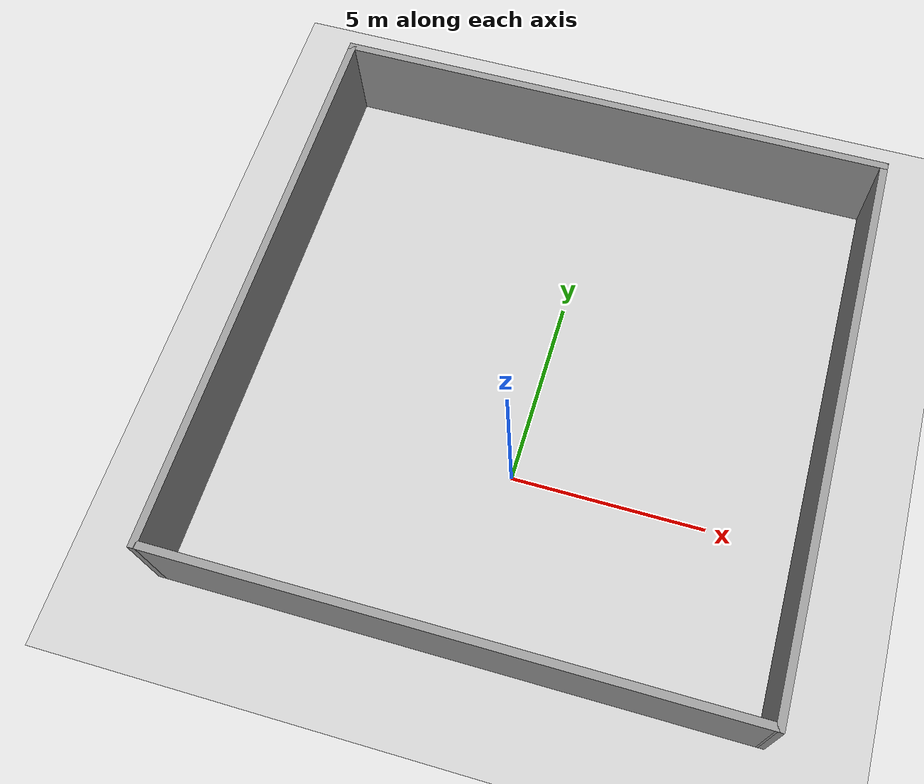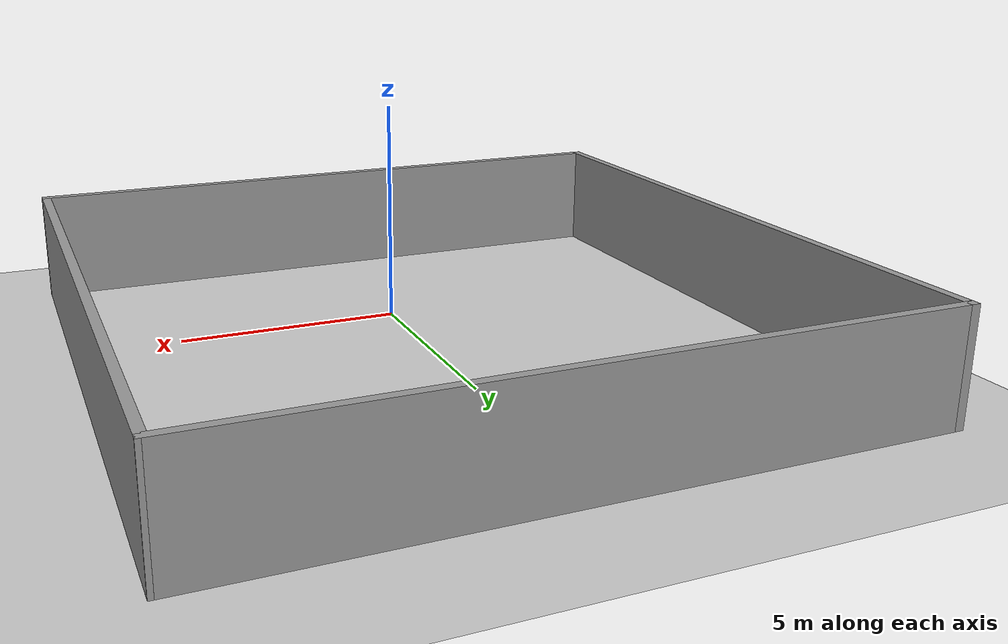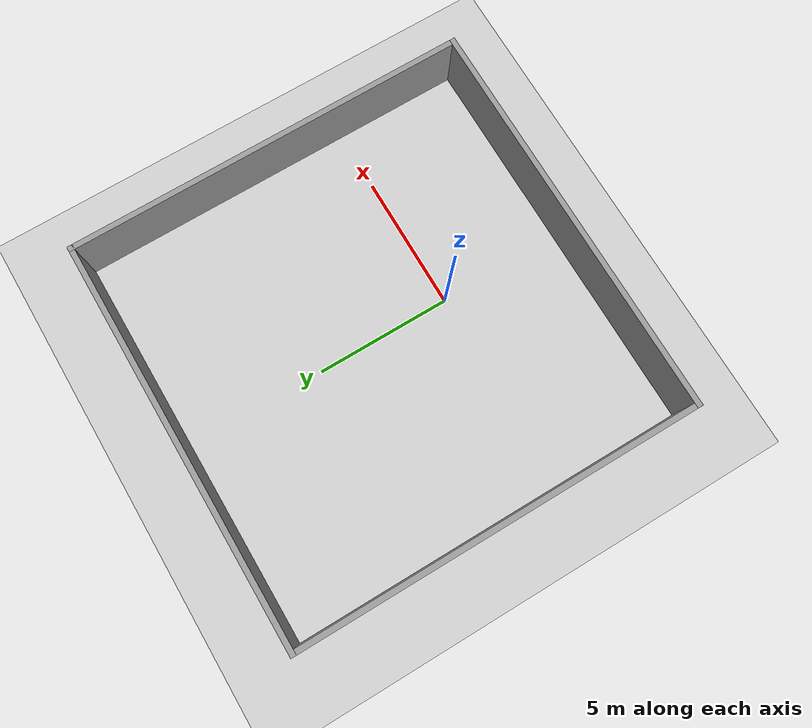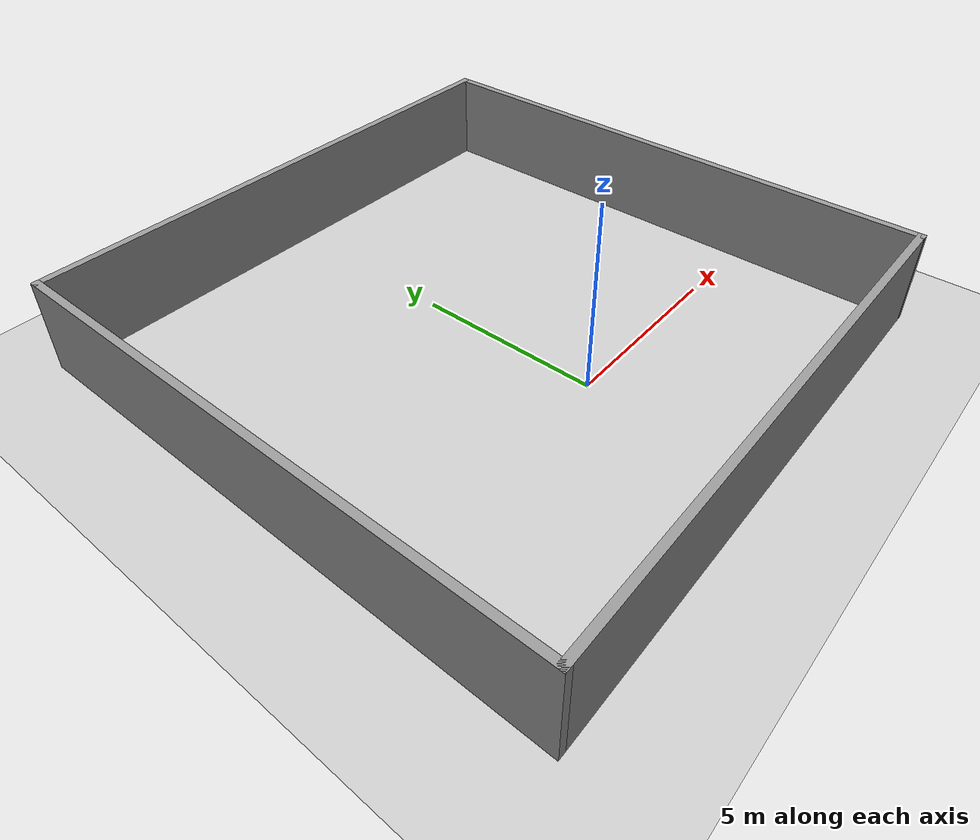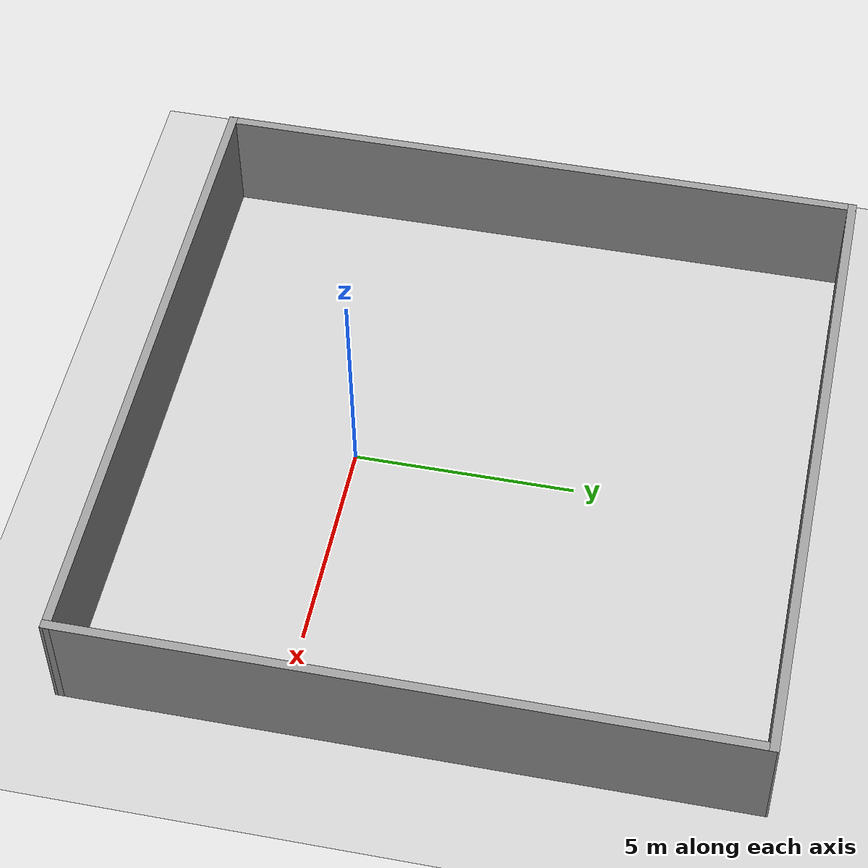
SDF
<?xml version='1.0'?>
<sdf version='1.4'>
  <world name="default">
    <!-- A global light source -->
    <include>
      <uri>model://sun</uri>
    </include>

    <physics type="ode">
      <gravity>0 0 -9.81</gravity>
      <max_step_size>0.001</max_step_size>
      <real_time_factor>1</real_time_factor>
      <real_time_update_rate>1000</real_time_update_rate>
      <ode>
        <solver>
          <type>quick</type>
          <iters>50</iters>
          <sor>1.4</sor>
        </solver>
        <constraints>
          <cfm>0</cfm>
          <erp>1</erp>
          <contact_max_correcting_vel>0</contact_max_correcting_vel>
          <contact_surface_layer>0</contact_surface_layer>
        </constraints>
      </ode>
    </physics>

    <include>
      <uri>model://ground_plane</uri>
    </include>

  <model name='building'>
    <link name='Wall_0'>
      <collision name='Wall_0_Collision'>
        <geometry>
          <box>
            <size>15 0.2 2.5</size>
          </box>
        </geometry>
        <pose>0 0 1.25 0 -0 0</pose>
      </collision>
      <visual name='Wall_0_Visual'>
        <pose>0 0 1.25 0 -0 0</pose>
        <geometry>
          <box>
            <size>15 0.2 2.5</size>
          </box>
        </geometry>
        <material>
          <script>
            <uri>file://media/materials/scripts/gazebo.material</uri>
            <name>Gazebo/Grey</name>
          </script>
        </material>
      </visual>
      <velocity_decay>
        <linear>0</linear>
        <angular>0</angular>
      </velocity_decay>
      <pose>-7.5 2.76 0 0 -0 1.5708</pose>
    </link>
    <link name='Wall_1'>
      <collision name='Wall_1_Collision'>
        <geometry>
          <box>
            <size>15 0.2 2.5</size>
          </box>
        </geometry>
        <pose>0 0 1.25 0 -0 0</pose>
      </collision>
      <visual name='Wall_1_Visual'>
        <pose>0 0 1.25 0 -0 0</pose>
        <geometry>
          <box>
            <size>15 0.2 2.5</size>
          </box>
        </geometry>
        <material>
          <script>
            <uri>file://media/materials/scripts/gazebo.material</uri>
            <name>Gazebo/Grey</name>
          </script>
        </material>
      </visual>
      <velocity_decay>
        <linear>0</linear>
        <angular>0</angular>
      </velocity_decay>
      <pose>-0.1 10.16 0 0 -0 0</pose>
    </link>
    <link name='Wall_2'>
      <collision name='Wall_2_Collision'>
        <geometry>
          <box>
            <size>15 0.2 2.5</size>
          </box>
        </geometry>
        <pose>0 0 1.25 0 -0 0</pose>
      </collision>
      <visual name='Wall_2_Visual'>
        <pose>0 0 1.25 0 -0 0</pose>
        <geometry>
          <box>
            <size>15 0.2 2.5</size>
          </box>
        </geometry>
        <material>
          <script>
            <uri>file://media/materials/scripts/gazebo.material</uri>
            <name>Gazebo/Grey</name>
          </script>
        </material>
      </visual>
      <velocity_decay>
        <linear>0</linear>
        <angular>0</angular>
      </velocity_decay>
      <pose>7.30318 2.76 0 0 0 -1.57037</pose>
    </link>
    <link name='Wall_3'>
      <collision name='Wall_3_Collision'>
        <geometry>
          <box>
            <size>15 0.2 2.5</size>
          </box>
        </geometry>
        <pose>0 0 1.25 0 -0 0</pose>
      </collision>
      <visual name='Wall_3_Visual'>
        <pose>0 0 1.25 0 -0 0</pose>
        <geometry>
          <box>
            <size>15 0.2 2.5</size>
          </box>
        </geometry>
        <material>
          <script>
            <uri>file://media/materials/scripts/gazebo.material</uri>
            <name>Gazebo/Grey</name>
          </script>
        </material>
      </visual>
      <velocity_decay>
        <linear>0</linear>
        <angular>0</angular>
      </velocity_decay>
      <pose>-0.093647 -4.64 0 0 -0 3.14159</pose>
    </link>
    <static>1</static>
  </model>

  </world>

</sdf>
